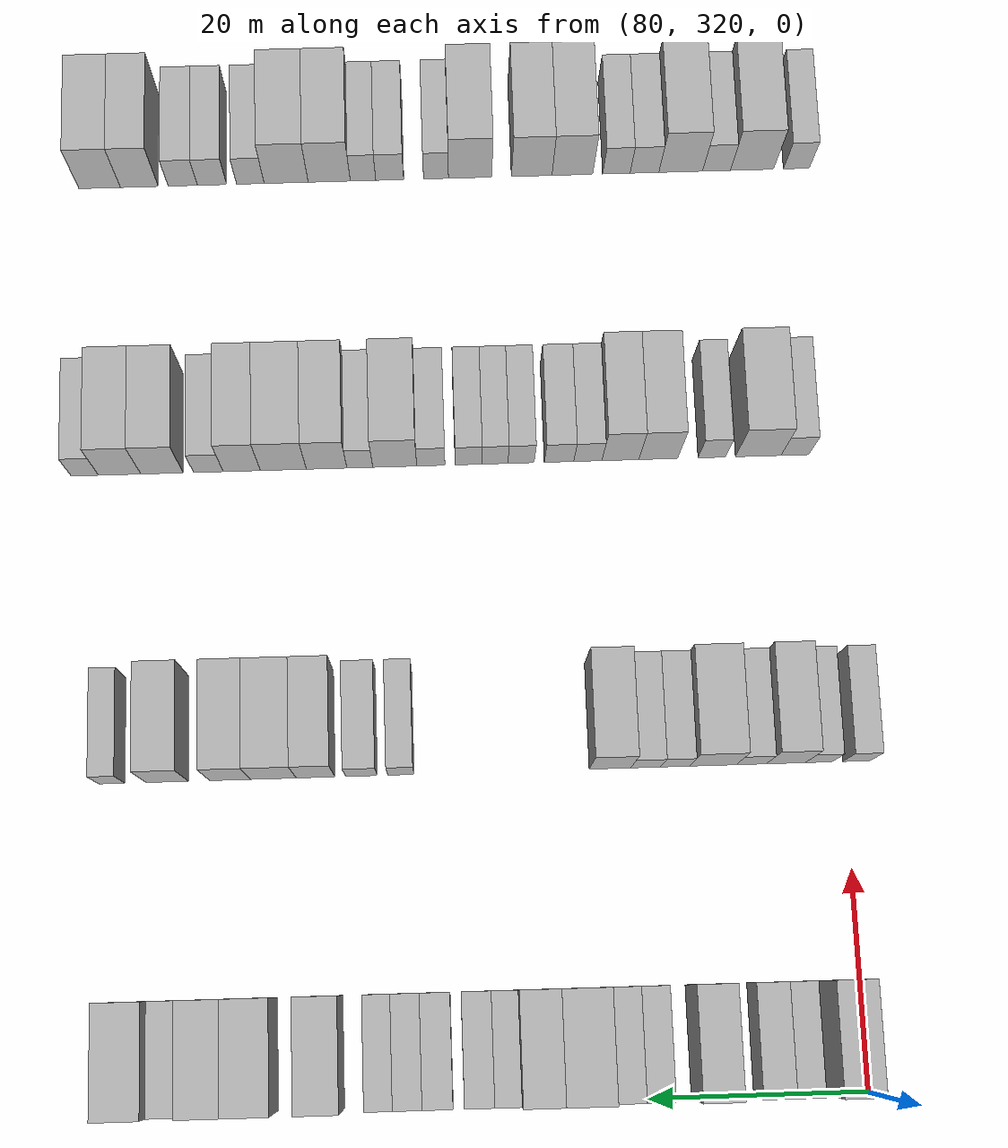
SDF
<sdf version="1.6">
 <world name="default">
  <model name="building_667">
   <static>1</static>
   <pose>85.0000 322.0831 0 0.000000 0.000000 0.000000</pose>
   <link name="link">
    <pose>0 0 4.50 0 0 0</pose>
    <collision name="collision"><geometry><box><size>10.0000 3.7141 9.0000</size></box></geometry></collision>
    <visual name="visual">
     <cast_shadows>0</cast_shadows>
     <geometry><box><size>10.0000 3.7141 9.0000</size></box></geometry>
     <material>
      <script>
       <uri>model://HANNAS_wall/materials/scripts</uri>
       <uri>model://HANNAS_wall/materials/textures</uri>
       <name>vrc/HANNAS_wall</name>
      </script>
     </material>
    </visual>
   </link>
  </model>
  <model name="building_668">
   <static>1</static>
   <pose>85.0000 326.1984 0 0.000000 0.000000 0.000000</pose>
   <link name="link">
    <pose>0 0 3.00 0 0 0</pose>
    <collision name="collision"><geometry><box><size>10.0000 2.5166 6.0000</size></box></geometry></collision>
    <visual name="visual">
     <cast_shadows>0</cast_shadows>
     <geometry><box><size>10.0000 2.5166 6.0000</size></box></geometry>
     <material>
      <script>
       <uri>model://HANNAS_wall/materials/scripts</uri>
       <uri>model://HANNAS_wall/materials/textures</uri>
       <name>vrc/HANNAS_wall</name>
      </script>
     </material>
    </visual>
   </link>
  </model>
  <model name="building_669">
   <static>1</static>
   <pose>85.0000 328.9546 0 0.000000 0.000000 0.000000</pose>
   <link name="link">
    <pose>0 0 3.00 0 0 0</pose>
    <collision name="collision"><geometry><box><size>10.0000 2.9959 6.0000</size></box></geometry></collision>
    <visual name="visual">
     <cast_shadows>0</cast_shadows>
     <geometry><box><size>10.0000 2.9959 6.0000</size></box></geometry>
     <material>
      <script>
       <uri>model://HANNAS_wall/materials/scripts</uri>
       <uri>model://HANNAS_wall/materials/textures</uri>
       <name>vrc/HANNAS_wall</name>
      </script>
     </material>
    </visual>
   </link>
  </model>
  <model name="building_670">
   <static>1</static>
   <pose>85.0000 334.2785 0 0.000000 0.000000 0.000000</pose>
   <link name="link">
    <pose>0 0 4.50 0 0 0</pose>
    <collision name="collision"><geometry><box><size>10.0000 3.6519 9.0000</size></box></geometry></collision>
    <visual name="visual">
     <cast_shadows>0</cast_shadows>
     <geometry><box><size>10.0000 3.6519 9.0000</size></box></geometry>
     <material>
      <script>
       <uri>model://HANNAS_wall/materials/scripts</uri>
       <uri>model://HANNAS_wall/materials/textures</uri>
       <name>vrc/HANNAS_wall</name>
      </script>
     </material>
    </visual>
   </link>
  </model>
  <model name="building_671">
   <static>1</static>
   <pose>85.0000 339.3771 0 0.000000 0.000000 0.000000</pose>
   <link name="link">
    <pose>0 0 3.00 0 0 0</pose>
    <collision name="collision"><geometry><box><size>10.0000 2.5452 6.0000</size></box></geometry></collision>
    <visual name="visual">
     <cast_shadows>0</cast_shadows>
     <geometry><box><size>10.0000 2.5452 6.0000</size></box></geometry>
     <material>
      <script>
       <uri>model://HANNAS_wall/materials/scripts</uri>
       <uri>model://HANNAS_wall/materials/textures</uri>
       <name>vrc/HANNAS_wall</name>
      </script>
     </material>
    </visual>
   </link>
  </model>
  <model name="building_672">
   <static>1</static>
   <pose>85.0000 342.0220 0 0.000000 0.000000 0.000000</pose>
   <link name="link">
    <pose>0 0 3.00 0 0 0</pose>
    <collision name="collision"><geometry><box><size>10.0000 2.7446 6.0000</size></box></geometry></collision>
    <visual name="visual">
     <cast_shadows>0</cast_shadows>
     <geometry><box><size>10.0000 2.7446 6.0000</size></box></geometry>
     <material>
      <script>
       <uri>model://HANNAS_wall/materials/scripts</uri>
       <uri>model://HANNAS_wall/materials/textures</uri>
       <name>vrc/HANNAS_wall</name>
      </script>
     </material>
    </visual>
   </link>
  </model>
  <model name="building_673">
   <static>1</static>
   <pose>85.0000 345.6330 0 0.000000 0.000000 0.000000</pose>
   <link name="link">
    <pose>0 0 4.50 0 0 0</pose>
    <collision name="collision"><geometry><box><size>10.0000 4.4774 9.0000</size></box></geometry></collision>
    <visual name="visual">
     <cast_shadows>0</cast_shadows>
     <geometry><box><size>10.0000 4.4774 9.0000</size></box></geometry>
     <material>
      <script>
       <uri>model://HANNAS_wall/materials/scripts</uri>
       <uri>model://HANNAS_wall/materials/textures</uri>
       <name>vrc/HANNAS_wall</name>
      </script>
     </material>
    </visual>
   </link>
  </model>
  <model name="building_674">
   <static>1</static>
   <pose>85.0000 349.7296 0 0.000000 0.000000 0.000000</pose>
   <link name="link">
    <pose>0 0 4.50 0 0 0</pose>
    <collision name="collision"><geometry><box><size>10.0000 3.7158 9.0000</size></box></geometry></collision>
    <visual name="visual">
     <cast_shadows>0</cast_shadows>
     <geometry><box><size>10.0000 3.7158 9.0000</size></box></geometry>
     <material>
      <script>
       <uri>model://HANNAS_wall/materials/scripts</uri>
       <uri>model://HANNAS_wall/materials/textures</uri>
       <name>vrc/HANNAS_wall</name>
      </script>
     </material>
    </visual>
   </link>
  </model>
  <model name="building_675">
   <static>1</static>
   <pose>85.0000 352.7878 0 0.000000 0.000000 0.000000</pose>
   <link name="link">
    <pose>0 0 3.00 0 0 0</pose>
    <collision name="collision"><geometry><box><size>10.0000 2.4004 6.0000</size></box></geometry></collision>
    <visual name="visual">
     <cast_shadows>0</cast_shadows>
     <geometry><box><size>10.0000 2.4004 6.0000</size></box></geometry>
     <material>
      <script>
       <uri>model://HANNAS_wall/materials/scripts</uri>
       <uri>model://HANNAS_wall/materials/textures</uri>
       <name>vrc/HANNAS_wall</name>
      </script>
     </material>
    </visual>
   </link>
  </model>
  <model name="building_676">
   <static>1</static>
   <pose>85.0000 355.3158 0 0.000000 0.000000 0.000000</pose>
   <link name="link">
    <pose>0 0 3.00 0 0 0</pose>
    <collision name="collision"><geometry><box><size>10.0000 2.6558 6.0000</size></box></geometry></collision>
    <visual name="visual">
     <cast_shadows>0</cast_shadows>
     <geometry><box><size>10.0000 2.6558 6.0000</size></box></geometry>
     <material>
      <script>
       <uri>model://HANNAS_wall/materials/scripts</uri>
       <uri>model://HANNAS_wall/materials/textures</uri>
       <name>vrc/HANNAS_wall</name>
      </script>
     </material>
    </visual>
   </link>
  </model>
  <model name="building_677">
   <static>1</static>
   <pose>85.0000 359.0017 0 0.000000 0.000000 0.000000</pose>
   <link name="link">
    <pose>0 0 3.00 0 0 0</pose>
    <collision name="collision"><geometry><box><size>10.0000 2.7160 6.0000</size></box></geometry></collision>
    <visual name="visual">
     <cast_shadows>0</cast_shadows>
     <geometry><box><size>10.0000 2.7160 6.0000</size></box></geometry>
     <material>
      <script>
       <uri>model://HANNAS_wall/materials/scripts</uri>
       <uri>model://HANNAS_wall/materials/textures</uri>
       <name>vrc/HANNAS_wall</name>
      </script>
     </material>
    </visual>
   </link>
  </model>
  <model name="building_678">
   <static>1</static>
   <pose>85.0000 361.6585 0 0.000000 0.000000 0.000000</pose>
   <link name="link">
    <pose>0 0 3.00 0 0 0</pose>
    <collision name="collision"><geometry><box><size>10.0000 2.5975 6.0000</size></box></geometry></collision>
    <visual name="visual">
     <cast_shadows>0</cast_shadows>
     <geometry><box><size>10.0000 2.5975 6.0000</size></box></geometry>
     <material>
      <script>
       <uri>model://HANNAS_wall/materials/scripts</uri>
       <uri>model://HANNAS_wall/materials/textures</uri>
       <name>vrc/HANNAS_wall</name>
      </script>
     </material>
    </visual>
   </link>
  </model>
  <model name="building_679">
   <static>1</static>
   <pose>85.0000 364.2082 0 0.000000 0.000000 0.000000</pose>
   <link name="link">
    <pose>0 0 3.00 0 0 0</pose>
    <collision name="collision"><geometry><box><size>10.0000 2.5020 6.0000</size></box></geometry></collision>
    <visual name="visual">
     <cast_shadows>0</cast_shadows>
     <geometry><box><size>10.0000 2.5020 6.0000</size></box></geometry>
     <material>
      <script>
       <uri>model://HANNAS_wall/materials/scripts</uri>
       <uri>model://HANNAS_wall/materials/textures</uri>
       <name>vrc/HANNAS_wall</name>
      </script>
     </material>
    </visual>
   </link>
  </model>
  <model name="building_680">
   <static>1</static>
   <pose>85.0000 369.4478 0 0.000000 0.000000 0.000000</pose>
   <link name="link">
    <pose>0 0 4.50 0 0 0</pose>
    <collision name="collision"><geometry><box><size>10.0000 3.9772 9.0000</size></box></geometry></collision>
    <visual name="visual">
     <cast_shadows>0</cast_shadows>
     <geometry><box><size>10.0000 3.9772 9.0000</size></box></geometry>
     <material>
      <script>
       <uri>model://HANNAS_wall/materials/scripts</uri>
       <uri>model://HANNAS_wall/materials/textures</uri>
       <name>vrc/HANNAS_wall</name>
      </script>
     </material>
    </visual>
   </link>
  </model>
  <model name="building_681">
   <static>1</static>
   <pose>85.0000 375.5853 0 0.000000 0.000000 0.000000</pose>
   <link name="link">
    <pose>0 0 4.50 0 0 0</pose>
    <collision name="collision"><geometry><box><size>10.0000 4.2978 9.0000</size></box></geometry></collision>
    <visual name="visual">
     <cast_shadows>0</cast_shadows>
     <geometry><box><size>10.0000 4.2978 9.0000</size></box></geometry>
     <material>
      <script>
       <uri>model://HANNAS_wall/materials/scripts</uri>
       <uri>model://HANNAS_wall/materials/textures</uri>
       <name>vrc/HANNAS_wall</name>
      </script>
     </material>
    </visual>
   </link>
  </model>
  <model name="building_682">
   <static>1</static>
   <pose>85.0000 379.7216 0 0.000000 0.000000 0.000000</pose>
   <link name="link">
    <pose>0 0 4.50 0 0 0</pose>
    <collision name="collision"><geometry><box><size>10.0000 3.9749 9.0000</size></box></geometry></collision>
    <visual name="visual">
     <cast_shadows>0</cast_shadows>
     <geometry><box><size>10.0000 3.9749 9.0000</size></box></geometry>
     <material>
      <script>
       <uri>model://HANNAS_wall/materials/scripts</uri>
       <uri>model://HANNAS_wall/materials/textures</uri>
       <name>vrc/HANNAS_wall</name>
      </script>
     </material>
    </visual>
   </link>
  </model>
  <model name="building_683">
   <static>1</static>
   <pose>85.0000 383.1324 0 0.000000 0.000000 0.000000</pose>
   <link name="link">
    <pose>0 0 3.00 0 0 0</pose>
    <collision name="collision"><geometry><box><size>10.0000 2.8466 6.0000</size></box></geometry></collision>
    <visual name="visual">
     <cast_shadows>0</cast_shadows>
     <geometry><box><size>10.0000 2.8466 6.0000</size></box></geometry>
     <material>
      <script>
       <uri>model://HANNAS_wall/materials/scripts</uri>
       <uri>model://HANNAS_wall/materials/textures</uri>
       <name>vrc/HANNAS_wall</name>
      </script>
     </material>
    </visual>
   </link>
  </model>
  <model name="building_684">
   <static>1</static>
   <pose>85.0000 386.7421 0 0.000000 0.000000 0.000000</pose>
   <link name="link">
    <pose>0 0 4.50 0 0 0</pose>
    <collision name="collision"><geometry><box><size>10.0000 4.3727 9.0000</size></box></geometry></collision>
    <visual name="visual">
     <cast_shadows>0</cast_shadows>
     <geometry><box><size>10.0000 4.3727 9.0000</size></box></geometry>
     <material>
      <script>
       <uri>model://HANNAS_wall/materials/scripts</uri>
       <uri>model://HANNAS_wall/materials/textures</uri>
       <name>vrc/HANNAS_wall</name>
      </script>
     </material>
    </visual>
   </link>
  </model>
  <model name="building_897">
   <static>1</static>
   <pose>115.0000 318.8263 0 0.000000 0.000000 0.000000</pose>
   <link name="link">
    <pose>0 0 3.00 0 0 0</pose>
    <collision name="collision"><geometry><box><size>10.0000 2.5791 6.0000</size></box></geometry></collision>
    <visual name="visual">
     <cast_shadows>0</cast_shadows>
     <geometry><box><size>10.0000 2.5791 6.0000</size></box></geometry>
     <material>
      <script>
       <uri>model://HANNAS_wall/materials/scripts</uri>
       <uri>model://HANNAS_wall/materials/textures</uri>
       <name>vrc/HANNAS_wall</name>
      </script>
     </material>
    </visual>
   </link>
  </model>
  <model name="building_898">
   <static>1</static>
   <pose>115.0000 322.3723 0 0.000000 0.000000 0.000000</pose>
   <link name="link">
    <pose>0 0 3.00 0 0 0</pose>
    <collision name="collision"><geometry><box><size>10.0000 2.5130 6.0000</size></box></geometry></collision>
    <visual name="visual">
     <cast_shadows>0</cast_shadows>
     <geometry><box><size>10.0000 2.5130 6.0000</size></box></geometry>
     <material>
      <script>
       <uri>model://HANNAS_wall/materials/scripts</uri>
       <uri>model://HANNAS_wall/materials/textures</uri>
       <name>vrc/HANNAS_wall</name>
      </script>
     </material>
    </visual>
   </link>
  </model>
  <model name="building_899">
   <static>1</static>
   <pose>115.0000 325.4734 0 0.000000 0.000000 0.000000</pose>
   <link name="link">
    <pose>0 0 4.50 0 0 0</pose>
    <collision name="collision"><geometry><box><size>10.0000 3.6890 9.0000</size></box></geometry></collision>
    <visual name="visual">
     <cast_shadows>0</cast_shadows>
     <geometry><box><size>10.0000 3.6890 9.0000</size></box></geometry>
     <material>
      <script>
       <uri>model://HANNAS_wall/materials/scripts</uri>
       <uri>model://HANNAS_wall/materials/textures</uri>
       <name>vrc/HANNAS_wall</name>
      </script>
     </material>
    </visual>
   </link>
  </model>
  <model name="building_900">
   <static>1</static>
   <pose>115.0000 328.7305 0 0.000000 0.000000 0.000000</pose>
   <link name="link">
    <pose>0 0 3.00 0 0 0</pose>
    <collision name="collision"><geometry><box><size>10.0000 2.8253 6.0000</size></box></geometry></collision>
    <visual name="visual">
     <cast_shadows>0</cast_shadows>
     <geometry><box><size>10.0000 2.8253 6.0000</size></box></geometry>
     <material>
      <script>
       <uri>model://HANNAS_wall/materials/scripts</uri>
       <uri>model://HANNAS_wall/materials/textures</uri>
       <name>vrc/HANNAS_wall</name>
      </script>
     </material>
    </visual>
   </link>
  </model>
  <model name="building_901">
   <static>1</static>
   <pose>115.0000 332.3542 0 0.000000 0.000000 0.000000</pose>
   <link name="link">
    <pose>0 0 4.50 0 0 0</pose>
    <collision name="collision"><geometry><box><size>10.0000 4.4220 9.0000</size></box></geometry></collision>
    <visual name="visual">
     <cast_shadows>0</cast_shadows>
     <geometry><box><size>10.0000 4.4220 9.0000</size></box></geometry>
     <material>
      <script>
       <uri>model://HANNAS_wall/materials/scripts</uri>
       <uri>model://HANNAS_wall/materials/textures</uri>
       <name>vrc/HANNAS_wall</name>
      </script>
     </material>
    </visual>
   </link>
  </model>
  <model name="building_902">
   <static>1</static>
   <pose>115.0000 335.9180 0 0.000000 0.000000 0.000000</pose>
   <link name="link">
    <pose>0 0 3.00 0 0 0</pose>
    <collision name="collision"><geometry><box><size>10.0000 2.7056 6.0000</size></box></geometry></collision>
    <visual name="visual">
     <cast_shadows>0</cast_shadows>
     <geometry><box><size>10.0000 2.7056 6.0000</size></box></geometry>
     <material>
      <script>
       <uri>model://HANNAS_wall/materials/scripts</uri>
       <uri>model://HANNAS_wall/materials/textures</uri>
       <name>vrc/HANNAS_wall</name>
      </script>
     </material>
    </visual>
   </link>
  </model>
  <model name="building_903">
   <static>1</static>
   <pose>115.0000 338.6670 0 0.000000 0.000000 0.000000</pose>
   <link name="link">
    <pose>0 0 3.00 0 0 0</pose>
    <collision name="collision"><geometry><box><size>10.0000 2.7924 6.0000</size></box></geometry></collision>
    <visual name="visual">
     <cast_shadows>0</cast_shadows>
     <geometry><box><size>10.0000 2.7924 6.0000</size></box></geometry>
     <material>
      <script>
       <uri>model://HANNAS_wall/materials/scripts</uri>
       <uri>model://HANNAS_wall/materials/textures</uri>
       <name>vrc/HANNAS_wall</name>
      </script>
     </material>
    </visual>
   </link>
  </model>
  <model name="building_904">
   <static>1</static>
   <pose>115.0000 342.0241 0 0.000000 0.000000 0.000000</pose>
   <link name="link">
    <pose>0 0 4.50 0 0 0</pose>
    <collision name="collision"><geometry><box><size>10.0000 3.9216 9.0000</size></box></geometry></collision>
    <visual name="visual">
     <cast_shadows>0</cast_shadows>
     <geometry><box><size>10.0000 3.9216 9.0000</size></box></geometry>
     <material>
      <script>
       <uri>model://HANNAS_wall/materials/scripts</uri>
       <uri>model://HANNAS_wall/materials/textures</uri>
       <name>vrc/HANNAS_wall</name>
      </script>
     </material>
    </visual>
   </link>
  </model>
  <model name="building_905">
   <static>1</static>
   <pose>115.0000 361.6612 0 0.000000 0.000000 0.000000</pose>
   <link name="link">
    <pose>0 0 3.00 0 0 0</pose>
    <collision name="collision"><geometry><box><size>10.0000 2.4509 6.0000</size></box></geometry></collision>
    <visual name="visual">
     <cast_shadows>0</cast_shadows>
     <geometry><box><size>10.0000 2.4509 6.0000</size></box></geometry>
     <material>
      <script>
       <uri>model://HANNAS_wall/materials/scripts</uri>
       <uri>model://HANNAS_wall/materials/textures</uri>
       <name>vrc/HANNAS_wall</name>
      </script>
     </material>
    </visual>
   </link>
  </model>
  <model name="building_906">
   <static>1</static>
   <pose>115.0000 365.3697 0 0.000000 0.000000 0.000000</pose>
   <link name="link">
    <pose>0 0 3.00 0 0 0</pose>
    <collision name="collision"><geometry><box><size>10.0000 2.9661 6.0000</size></box></geometry></collision>
    <visual name="visual">
     <cast_shadows>0</cast_shadows>
     <geometry><box><size>10.0000 2.9661 6.0000</size></box></geometry>
     <material>
      <script>
       <uri>model://HANNAS_wall/materials/scripts</uri>
       <uri>model://HANNAS_wall/materials/textures</uri>
       <name>vrc/HANNAS_wall</name>
      </script>
     </material>
    </visual>
   </link>
  </model>
  <model name="building_907">
   <static>1</static>
   <pose>115.0000 369.6671 0 0.000000 0.000000 0.000000</pose>
   <link name="link">
    <pose>0 0 4.50 0 0 0</pose>
    <collision name="collision"><geometry><box><size>10.0000 3.6287 9.0000</size></box></geometry></collision>
    <visual name="visual">
     <cast_shadows>0</cast_shadows>
     <geometry><box><size>10.0000 3.6287 9.0000</size></box></geometry>
     <material>
      <script>
       <uri>model://HANNAS_wall/materials/scripts</uri>
       <uri>model://HANNAS_wall/materials/textures</uri>
       <name>vrc/HANNAS_wall</name>
      </script>
     </material>
    </visual>
   </link>
  </model>
  <model name="building_908">
   <static>1</static>
   <pose>115.0000 373.6160 0 0.000000 0.000000 0.000000</pose>
   <link name="link">
    <pose>0 0 4.50 0 0 0</pose>
    <collision name="collision"><geometry><box><size>10.0000 4.2693 9.0000</size></box></geometry></collision>
    <visual name="visual">
     <cast_shadows>0</cast_shadows>
     <geometry><box><size>10.0000 4.2693 9.0000</size></box></geometry>
     <material>
      <script>
       <uri>model://HANNAS_wall/materials/scripts</uri>
       <uri>model://HANNAS_wall/materials/textures</uri>
       <name>vrc/HANNAS_wall</name>
      </script>
     </material>
    </visual>
   </link>
  </model>
  <model name="building_909">
   <static>1</static>
   <pose>115.0000 377.6816 0 0.000000 0.000000 0.000000</pose>
   <link name="link">
    <pose>0 0 4.50 0 0 0</pose>
    <collision name="collision"><geometry><box><size>10.0000 3.8619 9.0000</size></box></geometry></collision>
    <visual name="visual">
     <cast_shadows>0</cast_shadows>
     <geometry><box><size>10.0000 3.8619 9.0000</size></box></geometry>
     <material>
      <script>
       <uri>model://HANNAS_wall/materials/scripts</uri>
       <uri>model://HANNAS_wall/materials/textures</uri>
       <name>vrc/HANNAS_wall</name>
      </script>
     </material>
    </visual>
   </link>
  </model>
  <model name="building_910">
   <static>1</static>
   <pose>115.0000 383.5860 0 0.000000 0.000000 0.000000</pose>
   <link name="link">
    <pose>0 0 4.50 0 0 0</pose>
    <collision name="collision"><geometry><box><size>10.0000 3.9467 9.0000</size></box></geometry></collision>
    <visual name="visual">
     <cast_shadows>0</cast_shadows>
     <geometry><box><size>10.0000 3.9467 9.0000</size></box></geometry>
     <material>
      <script>
       <uri>model://HANNAS_wall/materials/scripts</uri>
       <uri>model://HANNAS_wall/materials/textures</uri>
       <name>vrc/HANNAS_wall</name>
      </script>
     </material>
    </visual>
   </link>
  </model>
  <model name="building_911">
   <static>1</static>
   <pose>115.0000 388.7809 0 0.000000 0.000000 0.000000</pose>
   <link name="link">
    <pose>0 0 3.00 0 0 0</pose>
    <collision name="collision"><geometry><box><size>10.0000 2.4430 6.0000</size></box></geometry></collision>
    <visual name="visual">
     <cast_shadows>0</cast_shadows>
     <geometry><box><size>10.0000 2.4430 6.0000</size></box></geometry>
     <material>
      <script>
       <uri>model://HANNAS_wall/materials/scripts</uri>
       <uri>model://HANNAS_wall/materials/textures</uri>
       <name>vrc/HANNAS_wall</name>
      </script>
     </material>
    </visual>
   </link>
  </model>
  <model name="building_1121">
   <static>1</static>
   <pose>145.0000 322.5432 0 0.000000 0.000000 0.000000</pose>
   <link name="link">
    <pose>0 0 3.00 0 0 0</pose>
    <collision name="collision"><geometry><box><size>10.0000 2.7155 6.0000</size></box></geometry></collision>
    <visual name="visual">
     <cast_shadows>0</cast_shadows>
     <geometry><box><size>10.0000 2.7155 6.0000</size></box></geometry>
     <material>
      <script>
       <uri>model://HANNAS_wall/materials/scripts</uri>
       <uri>model://HANNAS_wall/materials/textures</uri>
       <name>vrc/HANNAS_wall</name>
      </script>
     </material>
    </visual>
   </link>
  </model>
  <model name="building_1122">
   <static>1</static>
   <pose>145.0000 326.1267 0 0.000000 0.000000 0.000000</pose>
   <link name="link">
    <pose>0 0 4.50 0 0 0</pose>
    <collision name="collision"><geometry><box><size>10.0000 4.4514 9.0000</size></box></geometry></collision>
    <visual name="visual">
     <cast_shadows>0</cast_shadows>
     <geometry><box><size>10.0000 4.4514 9.0000</size></box></geometry>
     <material>
      <script>
       <uri>model://HANNAS_wall/materials/scripts</uri>
       <uri>model://HANNAS_wall/materials/textures</uri>
       <name>vrc/HANNAS_wall</name>
      </script>
     </material>
    </visual>
   </link>
  </model>
  <model name="building_1123">
   <static>1</static>
   <pose>145.0000 330.6788 0 0.000000 0.000000 0.000000</pose>
   <link name="link">
    <pose>0 0 3.00 0 0 0</pose>
    <collision name="collision"><geometry><box><size>10.0000 2.6529 6.0000</size></box></geometry></collision>
    <visual name="visual">
     <cast_shadows>0</cast_shadows>
     <geometry><box><size>10.0000 2.6529 6.0000</size></box></geometry>
     <material>
      <script>
       <uri>model://HANNAS_wall/materials/scripts</uri>
       <uri>model://HANNAS_wall/materials/textures</uri>
       <name>vrc/HANNAS_wall</name>
      </script>
     </material>
    </visual>
   </link>
  </model>
  <model name="building_1124">
   <static>1</static>
   <pose>145.0000 335.8990 0 0.000000 0.000000 0.000000</pose>
   <link name="link">
    <pose>0 0 4.50 0 0 0</pose>
    <collision name="collision"><geometry><box><size>10.0000 3.7876 9.0000</size></box></geometry></collision>
    <visual name="visual">
     <cast_shadows>0</cast_shadows>
     <geometry><box><size>10.0000 3.7876 9.0000</size></box></geometry>
     <material>
      <script>
       <uri>model://HANNAS_wall/materials/scripts</uri>
       <uri>model://HANNAS_wall/materials/textures</uri>
       <name>vrc/HANNAS_wall</name>
      </script>
     </material>
    </visual>
   </link>
  </model>
  <model name="building_1125">
   <static>1</static>
   <pose>145.0000 339.5947 0 0.000000 0.000000 0.000000</pose>
   <link name="link">
    <pose>0 0 4.50 0 0 0</pose>
    <collision name="collision"><geometry><box><size>10.0000 3.6038 9.0000</size></box></geometry></collision>
    <visual name="visual">
     <cast_shadows>0</cast_shadows>
     <geometry><box><size>10.0000 3.6038 9.0000</size></box></geometry>
     <material>
      <script>
       <uri>model://HANNAS_wall/materials/scripts</uri>
       <uri>model://HANNAS_wall/materials/textures</uri>
       <name>vrc/HANNAS_wall</name>
      </script>
     </material>
    </visual>
   </link>
  </model>
  <model name="building_1126">
   <static>1</static>
   <pose>145.0000 342.7654 0 0.000000 0.000000 0.000000</pose>
   <link name="link">
    <pose>0 0 3.00 0 0 0</pose>
    <collision name="collision"><geometry><box><size>10.0000 2.7376 6.0000</size></box></geometry></collision>
    <visual name="visual">
     <cast_shadows>0</cast_shadows>
     <geometry><box><size>10.0000 2.7376 6.0000</size></box></geometry>
     <material>
      <script>
       <uri>model://HANNAS_wall/materials/scripts</uri>
       <uri>model://HANNAS_wall/materials/textures</uri>
       <name>vrc/HANNAS_wall</name>
      </script>
     </material>
    </visual>
   </link>
  </model>
  <model name="building_1127">
   <static>1</static>
   <pose>145.0000 345.5703 0 0.000000 0.000000 0.000000</pose>
   <link name="link">
    <pose>0 0 3.00 0 0 0</pose>
    <collision name="collision"><geometry><box><size>10.0000 2.8721 6.0000</size></box></geometry></collision>
    <visual name="visual">
     <cast_shadows>0</cast_shadows>
     <geometry><box><size>10.0000 2.8721 6.0000</size></box></geometry>
     <material>
      <script>
       <uri>model://HANNAS_wall/materials/scripts</uri>
       <uri>model://HANNAS_wall/materials/textures</uri>
       <name>vrc/HANNAS_wall</name>
      </script>
     </material>
    </visual>
   </link>
  </model>
  <model name="building_1128">
   <static>1</static>
   <pose>145.0000 349.2879 0 0.000000 0.000000 0.000000</pose>
   <link name="link">
    <pose>0 0 3.00 0 0 0</pose>
    <collision name="collision"><geometry><box><size>10.0000 2.5630 6.0000</size></box></geometry></collision>
    <visual name="visual">
     <cast_shadows>0</cast_shadows>
     <geometry><box><size>10.0000 2.5630 6.0000</size></box></geometry>
     <material>
      <script>
       <uri>model://HANNAS_wall/materials/scripts</uri>
       <uri>model://HANNAS_wall/materials/textures</uri>
       <name>vrc/HANNAS_wall</name>
      </script>
     </material>
    </visual>
   </link>
  </model>
  <model name="building_1129">
   <static>1</static>
   <pose>145.0000 351.8407 0 0.000000 0.000000 0.000000</pose>
   <link name="link">
    <pose>0 0 3.00 0 0 0</pose>
    <collision name="collision"><geometry><box><size>10.0000 2.5426 6.0000</size></box></geometry></collision>
    <visual name="visual">
     <cast_shadows>0</cast_shadows>
     <geometry><box><size>10.0000 2.5426 6.0000</size></box></geometry>
     <material>
      <script>
       <uri>model://HANNAS_wall/materials/scripts</uri>
       <uri>model://HANNAS_wall/materials/textures</uri>
       <name>vrc/HANNAS_wall</name>
      </script>
     </material>
    </visual>
   </link>
  </model>
  <model name="building_1130">
   <static>1</static>
   <pose>145.0000 354.4028 0 0.000000 0.000000 0.000000</pose>
   <link name="link">
    <pose>0 0 3.00 0 0 0</pose>
    <collision name="collision"><geometry><box><size>10.0000 2.5817 6.0000</size></box></geometry></collision>
    <visual name="visual">
     <cast_shadows>0</cast_shadows>
     <geometry><box><size>10.0000 2.5817 6.0000</size></box></geometry>
     <material>
      <script>
       <uri>model://HANNAS_wall/materials/scripts</uri>
       <uri>model://HANNAS_wall/materials/textures</uri>
       <name>vrc/HANNAS_wall</name>
      </script>
     </material>
    </visual>
   </link>
  </model>
  <model name="building_1131">
   <static>1</static>
   <pose>145.0000 358.0663 0 0.000000 0.000000 0.000000</pose>
   <link name="link">
    <pose>0 0 3.00 0 0 0</pose>
    <collision name="collision"><geometry><box><size>10.0000 2.7452 6.0000</size></box></geometry></collision>
    <visual name="visual">
     <cast_shadows>0</cast_shadows>
     <geometry><box><size>10.0000 2.7452 6.0000</size></box></geometry>
     <material>
      <script>
       <uri>model://HANNAS_wall/materials/scripts</uri>
       <uri>model://HANNAS_wall/materials/textures</uri>
       <name>vrc/HANNAS_wall</name>
      </script>
     </material>
    </visual>
   </link>
  </model>
  <model name="building_1132">
   <static>1</static>
   <pose>145.0000 361.5763 0 0.000000 0.000000 0.000000</pose>
   <link name="link">
    <pose>0 0 4.50 0 0 0</pose>
    <collision name="collision"><geometry><box><size>10.0000 4.2748 9.0000</size></box></geometry></collision>
    <visual name="visual">
     <cast_shadows>0</cast_shadows>
     <geometry><box><size>10.0000 4.2748 9.0000</size></box></geometry>
     <material>
      <script>
       <uri>model://HANNAS_wall/materials/scripts</uri>
       <uri>model://HANNAS_wall/materials/textures</uri>
       <name>vrc/HANNAS_wall</name>
      </script>
     </material>
    </visual>
   </link>
  </model>
  <model name="building_1133">
   <static>1</static>
   <pose>145.0000 364.9740 0 0.000000 0.000000 0.000000</pose>
   <link name="link">
    <pose>0 0 3.00 0 0 0</pose>
    <collision name="collision"><geometry><box><size>10.0000 2.5205 6.0000</size></box></geometry></collision>
    <visual name="visual">
     <cast_shadows>0</cast_shadows>
     <geometry><box><size>10.0000 2.5205 6.0000</size></box></geometry>
     <material>
      <script>
       <uri>model://HANNAS_wall/materials/scripts</uri>
       <uri>model://HANNAS_wall/materials/textures</uri>
       <name>vrc/HANNAS_wall</name>
      </script>
     </material>
    </visual>
   </link>
  </model>
  <model name="building_1134">
   <static>1</static>
   <pose>145.0000 368.2064 0 0.000000 0.000000 0.000000</pose>
   <link name="link">
    <pose>0 0 4.50 0 0 0</pose>
    <collision name="collision"><geometry><box><size>10.0000 3.9443 9.0000</size></box></geometry></collision>
    <visual name="visual">
     <cast_shadows>0</cast_shadows>
     <geometry><box><size>10.0000 3.9443 9.0000</size></box></geometry>
     <material>
      <script>
       <uri>model://HANNAS_wall/materials/scripts</uri>
       <uri>model://HANNAS_wall/materials/textures</uri>
       <name>vrc/HANNAS_wall</name>
      </script>
     </material>
    </visual>
   </link>
  </model>
  <model name="building_1135">
   <static>1</static>
   <pose>145.0000 372.4148 0 0.000000 0.000000 0.000000</pose>
   <link name="link">
    <pose>0 0 4.50 0 0 0</pose>
    <collision name="collision"><geometry><box><size>10.0000 4.4725 9.0000</size></box></geometry></collision>
    <visual name="visual">
     <cast_shadows>0</cast_shadows>
     <geometry><box><size>10.0000 4.4725 9.0000</size></box></geometry>
     <material>
      <script>
       <uri>model://HANNAS_wall/materials/scripts</uri>
       <uri>model://HANNAS_wall/materials/textures</uri>
       <name>vrc/HANNAS_wall</name>
      </script>
     </material>
    </visual>
   </link>
  </model>
  <model name="building_1136">
   <static>1</static>
   <pose>145.0000 376.4621 0 0.000000 0.000000 0.000000</pose>
   <link name="link">
    <pose>0 0 4.50 0 0 0</pose>
    <collision name="collision"><geometry><box><size>10.0000 3.6221 9.0000</size></box></geometry></collision>
    <visual name="visual">
     <cast_shadows>0</cast_shadows>
     <geometry><box><size>10.0000 3.6221 9.0000</size></box></geometry>
     <material>
      <script>
       <uri>model://HANNAS_wall/materials/scripts</uri>
       <uri>model://HANNAS_wall/materials/textures</uri>
       <name>vrc/HANNAS_wall</name>
      </script>
     </material>
    </visual>
   </link>
  </model>
  <model name="building_1137">
   <static>1</static>
   <pose>145.0000 379.7101 0 0.000000 0.000000 0.000000</pose>
   <link name="link">
    <pose>0 0 3.00 0 0 0</pose>
    <collision name="collision"><geometry><box><size>10.0000 2.8740 6.0000</size></box></geometry></collision>
    <visual name="visual">
     <cast_shadows>0</cast_shadows>
     <geometry><box><size>10.0000 2.8740 6.0000</size></box></geometry>
     <material>
      <script>
       <uri>model://HANNAS_wall/materials/scripts</uri>
       <uri>model://HANNAS_wall/materials/textures</uri>
       <name>vrc/HANNAS_wall</name>
      </script>
     </material>
    </visual>
   </link>
  </model>
  <model name="building_1138">
   <static>1</static>
   <pose>145.0000 384.2101 0 0.000000 0.000000 0.000000</pose>
   <link name="link">
    <pose>0 0 4.50 0 0 0</pose>
    <collision name="collision"><geometry><box><size>10.0000 4.1260 9.0000</size></box></geometry></collision>
    <visual name="visual">
     <cast_shadows>0</cast_shadows>
     <geometry><box><size>10.0000 4.1260 9.0000</size></box></geometry>
     <material>
      <script>
       <uri>model://HANNAS_wall/materials/scripts</uri>
       <uri>model://HANNAS_wall/materials/textures</uri>
       <name>vrc/HANNAS_wall</name>
      </script>
     </material>
    </visual>
   </link>
  </model>
  <model name="building_1139">
   <static>1</static>
   <pose>145.0000 388.3330 0 0.000000 0.000000 0.000000</pose>
   <link name="link">
    <pose>0 0 4.50 0 0 0</pose>
    <collision name="collision"><geometry><box><size>10.0000 4.1197 9.0000</size></box></geometry></collision>
    <visual name="visual">
     <cast_shadows>0</cast_shadows>
     <geometry><box><size>10.0000 4.1197 9.0000</size></box></geometry>
     <material>
      <script>
       <uri>model://HANNAS_wall/materials/scripts</uri>
       <uri>model://HANNAS_wall/materials/textures</uri>
       <name>vrc/HANNAS_wall</name>
      </script>
     </material>
    </visual>
   </link>
  </model>
  <model name="building_1140">
   <static>1</static>
   <pose>145.0000 391.7263 0 0.000000 0.000000 0.000000</pose>
   <link name="link">
    <pose>0 0 3.00 0 0 0</pose>
    <collision name="collision"><geometry><box><size>10.0000 2.6670 6.0000</size></box></geometry></collision>
    <visual name="visual">
     <cast_shadows>0</cast_shadows>
     <geometry><box><size>10.0000 2.6670 6.0000</size></box></geometry>
     <material>
      <script>
       <uri>model://HANNAS_wall/materials/scripts</uri>
       <uri>model://HANNAS_wall/materials/textures</uri>
       <name>vrc/HANNAS_wall</name>
      </script>
     </material>
    </visual>
   </link>
  </model>
  <model name="building_1338">
   <static>1</static>
   <pose>175.0000 320.3188 0 0.000000 0.000000 0.000000</pose>
   <link name="link">
    <pose>0 0 3.00 0 0 0</pose>
    <collision name="collision"><geometry><box><size>10.0000 2.6155 6.0000</size></box></geometry></collision>
    <visual name="visual">
     <cast_shadows>0</cast_shadows>
     <geometry><box><size>10.0000 2.6155 6.0000</size></box></geometry>
     <material>
      <script>
       <uri>model://HANNAS_wall/materials/scripts</uri>
       <uri>model://HANNAS_wall/materials/textures</uri>
       <name>vrc/HANNAS_wall</name>
      </script>
     </material>
    </visual>
   </link>
  </model>
  <model name="building_1339">
   <static>1</static>
   <pose>175.0000 324.8106 0 0.000000 0.000000 0.000000</pose>
   <link name="link">
    <pose>0 0 4.50 0 0 0</pose>
    <collision name="collision"><geometry><box><size>10.0000 4.3682 9.0000</size></box></geometry></collision>
    <visual name="visual">
     <cast_shadows>0</cast_shadows>
     <geometry><box><size>10.0000 4.3682 9.0000</size></box></geometry>
     <material>
      <script>
       <uri>model://HANNAS_wall/materials/scripts</uri>
       <uri>model://HANNAS_wall/materials/textures</uri>
       <name>vrc/HANNAS_wall</name>
      </script>
     </material>
    </visual>
   </link>
  </model>
  <model name="building_1340">
   <static>1</static>
   <pose>175.0000 328.3988 0 0.000000 0.000000 0.000000</pose>
   <link name="link">
    <pose>0 0 3.00 0 0 0</pose>
    <collision name="collision"><geometry><box><size>10.0000 2.8084 6.0000</size></box></geometry></collision>
    <visual name="visual">
     <cast_shadows>0</cast_shadows>
     <geometry><box><size>10.0000 2.8084 6.0000</size></box></geometry>
     <material>
      <script>
       <uri>model://HANNAS_wall/materials/scripts</uri>
       <uri>model://HANNAS_wall/materials/textures</uri>
       <name>vrc/HANNAS_wall</name>
      </script>
     </material>
    </visual>
   </link>
  </model>
  <model name="building_1341">
   <static>1</static>
   <pose>175.0000 332.0130 0 0.000000 0.000000 0.000000</pose>
   <link name="link">
    <pose>0 0 4.50 0 0 0</pose>
    <collision name="collision"><geometry><box><size>10.0000 4.4200 9.0000</size></box></geometry></collision>
    <visual name="visual">
     <cast_shadows>0</cast_shadows>
     <geometry><box><size>10.0000 4.4200 9.0000</size></box></geometry>
     <material>
      <script>
       <uri>model://HANNAS_wall/materials/scripts</uri>
       <uri>model://HANNAS_wall/materials/textures</uri>
       <name>vrc/HANNAS_wall</name>
      </script>
     </material>
    </visual>
   </link>
  </model>
  <model name="building_1342">
   <static>1</static>
   <pose>175.0000 335.6792 0 0.000000 0.000000 0.000000</pose>
   <link name="link">
    <pose>0 0 3.00 0 0 0</pose>
    <collision name="collision"><geometry><box><size>10.0000 2.9124 6.0000</size></box></geometry></collision>
    <visual name="visual">
     <cast_shadows>0</cast_shadows>
     <geometry><box><size>10.0000 2.9124 6.0000</size></box></geometry>
     <material>
      <script>
       <uri>model://HANNAS_wall/materials/scripts</uri>
       <uri>model://HANNAS_wall/materials/textures</uri>
       <name>vrc/HANNAS_wall</name>
      </script>
     </material>
    </visual>
   </link>
  </model>
  <model name="building_1343">
   <static>1</static>
   <pose>175.0000 338.5233 0 0.000000 0.000000 0.000000</pose>
   <link name="link">
    <pose>0 0 3.00 0 0 0</pose>
    <collision name="collision"><geometry><box><size>10.0000 2.7759 6.0000</size></box></geometry></collision>
    <visual name="visual">
     <cast_shadows>0</cast_shadows>
     <geometry><box><size>10.0000 2.7759 6.0000</size></box></geometry>
     <material>
      <script>
       <uri>model://HANNAS_wall/materials/scripts</uri>
       <uri>model://HANNAS_wall/materials/textures</uri>
       <name>vrc/HANNAS_wall</name>
      </script>
     </material>
    </visual>
   </link>
  </model>
  <model name="building_1344">
   <static>1</static>
   <pose>175.0000 342.9684 0 0.000000 0.000000 0.000000</pose>
   <link name="link">
    <pose>0 0 4.50 0 0 0</pose>
    <collision name="collision"><geometry><box><size>10.0000 4.1142 9.0000</size></box></geometry></collision>
    <visual name="visual">
     <cast_shadows>0</cast_shadows>
     <geometry><box><size>10.0000 4.1142 9.0000</size></box></geometry>
     <material>
      <script>
       <uri>model://HANNAS_wall/materials/scripts</uri>
       <uri>model://HANNAS_wall/materials/textures</uri>
       <name>vrc/HANNAS_wall</name>
      </script>
     </material>
    </visual>
   </link>
  </model>
  <model name="building_1345">
   <static>1</static>
   <pose>175.0000 347.0749 0 0.000000 0.000000 0.000000</pose>
   <link name="link">
    <pose>0 0 4.50 0 0 0</pose>
    <collision name="collision"><geometry><box><size>10.0000 4.0989 9.0000</size></box></geometry></collision>
    <visual name="visual">
     <cast_shadows>0</cast_shadows>
     <geometry><box><size>10.0000 4.0989 9.0000</size></box></geometry>
     <material>
      <script>
       <uri>model://HANNAS_wall/materials/scripts</uri>
       <uri>model://HANNAS_wall/materials/textures</uri>
       <name>vrc/HANNAS_wall</name>
      </script>
     </material>
    </visual>
   </link>
  </model>
  <model name="building_1346">
   <static>1</static>
   <pose>175.0000 353.3045 0 0.000000 0.000000 0.000000</pose>
   <link name="link">
    <pose>0 0 4.50 0 0 0</pose>
    <collision name="collision"><geometry><box><size>10.0000 4.3603 9.0000</size></box></geometry></collision>
    <visual name="visual">
     <cast_shadows>0</cast_shadows>
     <geometry><box><size>10.0000 4.3603 9.0000</size></box></geometry>
     <material>
      <script>
       <uri>model://HANNAS_wall/materials/scripts</uri>
       <uri>model://HANNAS_wall/materials/textures</uri>
       <name>vrc/HANNAS_wall</name>
      </script>
     </material>
    </visual>
   </link>
  </model>
  <model name="building_1347">
   <static>1</static>
   <pose>175.0000 356.7396 0 0.000000 0.000000 0.000000</pose>
   <link name="link">
    <pose>0 0 3.00 0 0 0</pose>
    <collision name="collision"><geometry><box><size>10.0000 2.5098 6.0000</size></box></geometry></collision>
    <visual name="visual">
     <cast_shadows>0</cast_shadows>
     <geometry><box><size>10.0000 2.5098 6.0000</size></box></geometry>
     <material>
      <script>
       <uri>model://HANNAS_wall/materials/scripts</uri>
       <uri>model://HANNAS_wall/materials/textures</uri>
       <name>vrc/HANNAS_wall</name>
      </script>
     </material>
    </visual>
   </link>
  </model>
  <model name="building_1348">
   <static>1</static>
   <pose>175.0000 361.4062 0 0.000000 0.000000 0.000000</pose>
   <link name="link">
    <pose>0 0 3.00 0 0 0</pose>
    <collision name="collision"><geometry><box><size>10.0000 2.8236 6.0000</size></box></geometry></collision>
    <visual name="visual">
     <cast_shadows>0</cast_shadows>
     <geometry><box><size>10.0000 2.8236 6.0000</size></box></geometry>
     <material>
      <script>
       <uri>model://HANNAS_wall/materials/scripts</uri>
       <uri>model://HANNAS_wall/materials/textures</uri>
       <name>vrc/HANNAS_wall</name>
      </script>
     </material>
    </visual>
   </link>
  </model>
  <model name="building_1349">
   <static>1</static>
   <pose>175.0000 364.1013 0 0.000000 0.000000 0.000000</pose>
   <link name="link">
    <pose>0 0 3.00 0 0 0</pose>
    <collision name="collision"><geometry><box><size>10.0000 2.5666 6.0000</size></box></geometry></collision>
    <visual name="visual">
     <cast_shadows>0</cast_shadows>
     <geometry><box><size>10.0000 2.5666 6.0000</size></box></geometry>
     <material>
      <script>
       <uri>model://HANNAS_wall/materials/scripts</uri>
       <uri>model://HANNAS_wall/materials/textures</uri>
       <name>vrc/HANNAS_wall</name>
      </script>
     </material>
    </visual>
   </link>
  </model>
  <model name="building_1350">
   <static>1</static>
   <pose>175.0000 367.5077 0 0.000000 0.000000 0.000000</pose>
   <link name="link">
    <pose>0 0 4.50 0 0 0</pose>
    <collision name="collision"><geometry><box><size>10.0000 4.2461 9.0000</size></box></geometry></collision>
    <visual name="visual">
     <cast_shadows>0</cast_shadows>
     <geometry><box><size>10.0000 4.2461 9.0000</size></box></geometry>
     <material>
      <script>
       <uri>model://HANNAS_wall/materials/scripts</uri>
       <uri>model://HANNAS_wall/materials/textures</uri>
       <name>vrc/HANNAS_wall</name>
      </script>
     </material>
    </visual>
   </link>
  </model>
  <model name="building_1351">
   <static>1</static>
   <pose>175.0000 371.8470 0 0.000000 0.000000 0.000000</pose>
   <link name="link">
    <pose>0 0 4.50 0 0 0</pose>
    <collision name="collision"><geometry><box><size>10.0000 4.4323 9.0000</size></box></geometry></collision>
    <visual name="visual">
     <cast_shadows>0</cast_shadows>
     <geometry><box><size>10.0000 4.4323 9.0000</size></box></geometry>
     <material>
      <script>
       <uri>model://HANNAS_wall/materials/scripts</uri>
       <uri>model://HANNAS_wall/materials/textures</uri>
       <name>vrc/HANNAS_wall</name>
      </script>
     </material>
    </visual>
   </link>
  </model>
  <model name="building_1352">
   <static>1</static>
   <pose>175.0000 375.4532 0 0.000000 0.000000 0.000000</pose>
   <link name="link">
    <pose>0 0 3.00 0 0 0</pose>
    <collision name="collision"><geometry><box><size>10.0000 2.7802 6.0000</size></box></geometry></collision>
    <visual name="visual">
     <cast_shadows>0</cast_shadows>
     <geometry><box><size>10.0000 2.7802 6.0000</size></box></geometry>
     <material>
      <script>
       <uri>model://HANNAS_wall/materials/scripts</uri>
       <uri>model://HANNAS_wall/materials/textures</uri>
       <name>vrc/HANNAS_wall</name>
      </script>
     </material>
    </visual>
   </link>
  </model>
  <model name="building_1353">
   <static>1</static>
   <pose>175.0000 379.3211 0 0.000000 0.000000 0.000000</pose>
   <link name="link">
    <pose>0 0 3.00 0 0 0</pose>
    <collision name="collision"><geometry><box><size>10.0000 2.9554 6.0000</size></box></geometry></collision>
    <visual name="visual">
     <cast_shadows>0</cast_shadows>
     <geometry><box><size>10.0000 2.9554 6.0000</size></box></geometry>
     <material>
      <script>
       <uri>model://HANNAS_wall/materials/scripts</uri>
       <uri>model://HANNAS_wall/materials/textures</uri>
       <name>vrc/HANNAS_wall</name>
      </script>
     </material>
    </visual>
   </link>
  </model>
  <model name="building_1354">
   <static>1</static>
   <pose>175.0000 382.2672 0 0.000000 0.000000 0.000000</pose>
   <link name="link">
    <pose>0 0 3.00 0 0 0</pose>
    <collision name="collision"><geometry><box><size>10.0000 2.9369 6.0000</size></box></geometry></collision>
    <visual name="visual">
     <cast_shadows>0</cast_shadows>
     <geometry><box><size>10.0000 2.9369 6.0000</size></box></geometry>
     <material>
      <script>
       <uri>model://HANNAS_wall/materials/scripts</uri>
       <uri>model://HANNAS_wall/materials/textures</uri>
       <name>vrc/HANNAS_wall</name>
      </script>
     </material>
    </visual>
   </link>
  </model>
  <model name="building_1355">
   <static>1</static>
   <pose>175.0000 386.6434 0 0.000000 0.000000 0.000000</pose>
   <link name="link">
    <pose>0 0 4.50 0 0 0</pose>
    <collision name="collision"><geometry><box><size>10.0000 3.8155 9.0000</size></box></geometry></collision>
    <visual name="visual">
     <cast_shadows>0</cast_shadows>
     <geometry><box><size>10.0000 3.8155 9.0000</size></box></geometry>
     <material>
      <script>
       <uri>model://HANNAS_wall/materials/scripts</uri>
       <uri>model://HANNAS_wall/materials/textures</uri>
       <name>vrc/HANNAS_wall</name>
      </script>
     </material>
    </visual>
   </link>
  </model>
  <model name="building_1356">
   <static>1</static>
   <pose>175.0000 390.6424 0 0.000000 0.000000 0.000000</pose>
   <link name="link">
    <pose>0 0 4.50 0 0 0</pose>
    <collision name="collision"><geometry><box><size>10.0000 4.1826 9.0000</size></box></geometry></collision>
    <visual name="visual">
     <cast_shadows>0</cast_shadows>
     <geometry><box><size>10.0000 4.1826 9.0000</size></box></geometry>
     <material>
      <script>
       <uri>model://HANNAS_wall/materials/scripts</uri>
       <uri>model://HANNAS_wall/materials/textures</uri>
       <name>vrc/HANNAS_wall</name>
      </script>
     </material>
    </visual>
   </link>
  </model>
 </world>
</sdf>
